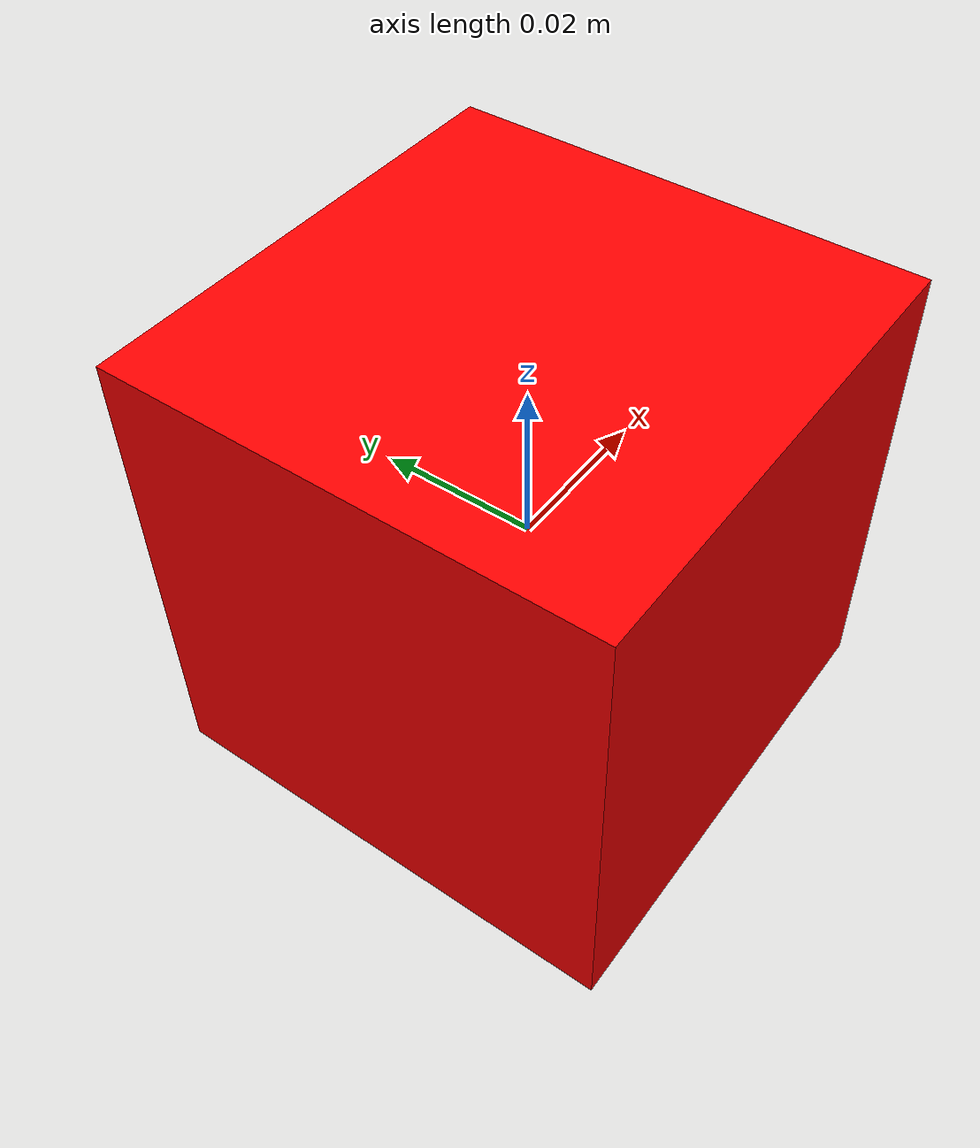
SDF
<?xml version="1.0"?>
<sdf version="1.7">

  <!-- world->ghost_body_y->ghost_body_z_sphere-->
  <model name="simple_cuboid0.06m">
    <!-- The model for a solid box of uniform density. -->
    <link name="box">
      <inertial>
        <mass>0.5</mass>
        <inertia>
          <ixx>3e-4</ixx>
          <ixy>0</ixy>
          <ixz>0</ixz>
          <iyy>3e-4</iyy>
          <iyz>0</iyz>
          <izz>3e-4</izz>
        </inertia>
      </inertial>

      <visual name="box_visual">
        <geometry>
          <box>
            <size>0.059 0.059 0.059</size>
          </box>
        </geometry>
        <material>
          <diffuse>1.0 0. 0. 1.0</diffuse>
        </material>
      </visual>

      <collision name="collision">
        <geometry>
          <box>
            <size>0.059 0.059 0.059</size>
          </box>
        </geometry>
        <surface>
          <friction>
            <ode>
              <mu>1.0</mu>
              <mu2>1.0</mu2>
            </ode>
          </friction>
        </surface>
      </collision>

      <collision name="minus_x_lower_left_corner">
        <pose> -0.03 -0.03 -0.03 0 0 0</pose>
        <geometry>
          <sphere>
            <radius>1e-7</radius>
          </sphere>
        </geometry>
      </collision>

      <collision name="minus_x_lower_right_corner">
        <pose> -0.03 0.03 -0.03 0 0 0 </pose>
        <geometry>
          <sphere>
            <radius>1e-7</radius>
          </sphere>
        </geometry>
      </collision>

      <collision name="plus_x_lower_left_corner">
        <pose> 0.03 -0.03 -0.03 0 0 0</pose>
        <geometry>
          <sphere>
            <radius>1e-7</radius>
          </sphere>
        </geometry>
      </collision>

      <collision name="plus_x_lower_right_corner">
        <pose> 0.03 0.03 -0.03 0 0 0 </pose>
        <geometry>
          <sphere>
            <radius>1e-7</radius>
          </sphere>
        </geometry>
      </collision>

      <collision name="minus_x_upper_left_corner">
        <pose> -0.03 -0.03 0.03 0 0 0</pose>
        <geometry>
          <sphere>
            <radius>1e-7</radius>
          </sphere>
        </geometry>
      </collision>

      <collision name="minus_x_upper_right_corner">
        <pose> -0.03 0.03 0.03 0 0 0 </pose>
        <geometry>
          <sphere>
            <radius>1e-7</radius>
          </sphere>
        </geometry>
      </collision>

      <collision name="plus_x_upper_left_corner">
        <pose> 0.03 -0.03 0.03 0 0 0</pose>
        <geometry>
          <sphere>
            <radius>1e-7</radius>
          </sphere>
        </geometry>
      </collision>

      <collision name="plus_x_upper_right_corner">
        <pose> 0.03 0.03 0.03 0 0 0 </pose>
        <geometry>
          <sphere>
            <radius>1e-7</radius>
          </sphere>
        </geometry>
      </collision>

    </link>
  </model>
</sdf>
